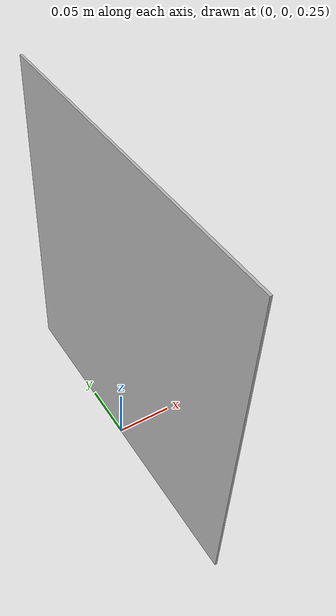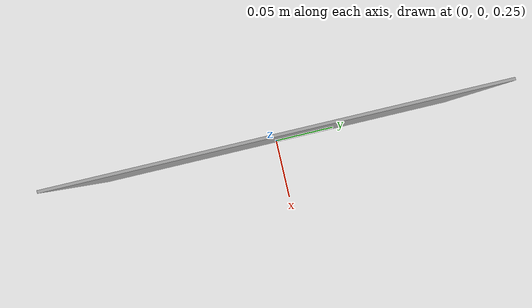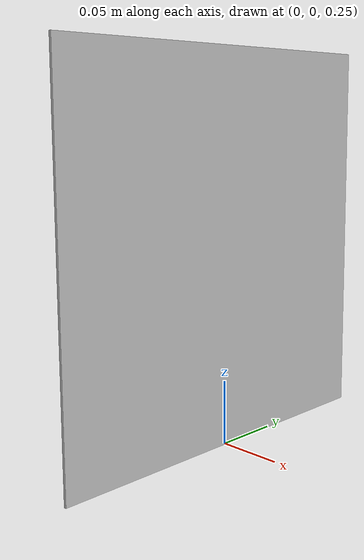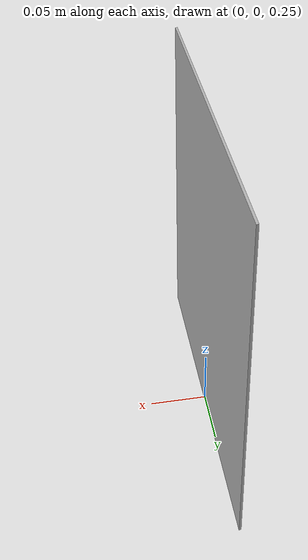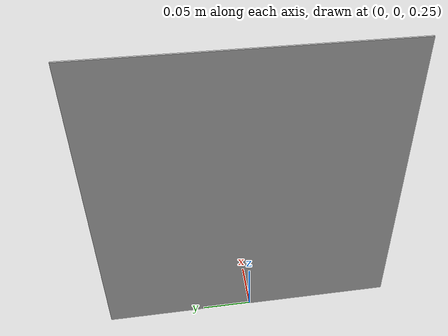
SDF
<?xml version="1.0"?>
<sdf version="1.5">
  <model name="qr_world">
    <pose>0 0 0.4  -1.5708 0 -1.5708</pose>
    <static>true</static>
    <link name="link">
      <visual name="visual">
        <geometry>
          <mesh>
            <uri>model://qr_world/world.dae</uri>
          </mesh>
        </geometry>
      </visual>
    </link>
  </model>
</sdf>
